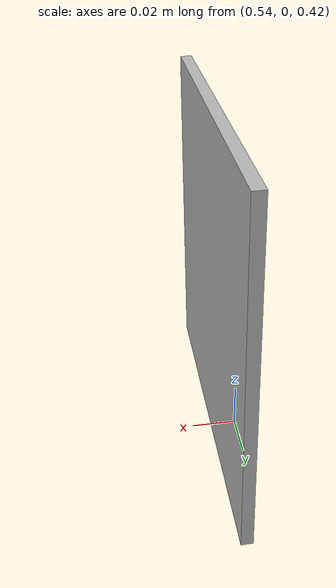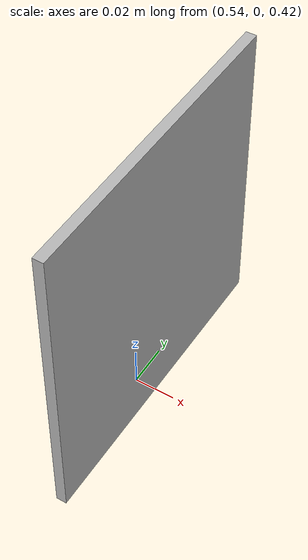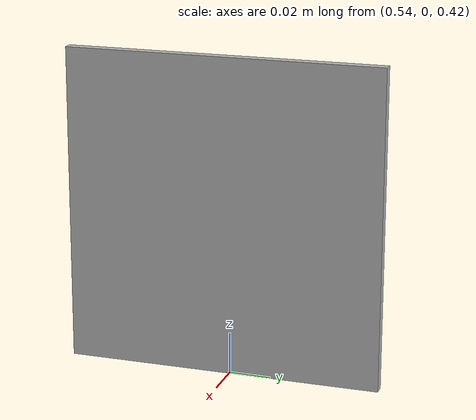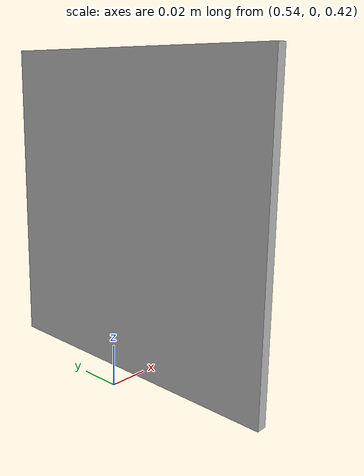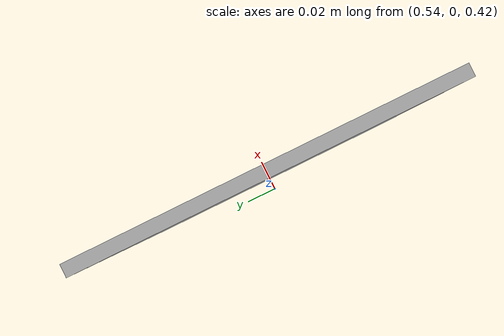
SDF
<?xml version="1.0" ?>
<sdf version="1.5">
  <world name="default">

    <physics type="ode">
      <max_step_size>0.0002</max_step_size>
      <real_time_factor>1</real_time_factor>
      <real_time_update_rate>5000</real_time_update_rate>
      <gravity>0 0 -9.81</gravity>
      <ode>
        <solver>
          <type>quick</type>
          <iters>50</iters>
          <sor>1.3</sor>
        </solver>
        <constraints>
          <cfm>0.0</cfm>
          <erp>0.2</erp>
          <contact_max_correcting_vel>10.0</contact_max_correcting_vel>
          <contact_surface_layer>0.001</contact_surface_layer>
        </constraints>
      </ode>
    </physics>

    <scene>
      <sky>
        <clouds><speed>12</speed></clouds>
      </sky>
    </scene>

    <include><uri>model://sun</uri></include>
    <include><uri>model://ground_plane</uri></include>

    <!-- ArUco Marker 0 — initial position in the arm's reachable workspace -->
    <!-- Moved by marker_mover_node at runtime via /gazebo/set_model_state -->
    <include>
      <uri>model://aruco_marker_0</uri>
      <name>aruco_marker_0</name>
      <pose>0.55 0 0.5 0 -1.5708 0</pose>
    </include>

  </world>
</sdf>

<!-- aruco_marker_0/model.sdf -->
<sdf version="1.6">
  <model name="aruco_marker_0">
    <static>false</static>
    <link name="marker_link">

      <inertial>
        <mass>0.1</mass>
        <inertia>
          <ixx>0.0001</ixx><ixy>0</ixy><ixz>0</ixz>
          <iyy>0.0001</iyy><iyz>0</iyz>
          <izz>0.0001</izz>
        </inertia>
      </inertial>

      <!-- Thin flat board: 0.15m x 0.15m x 0.005m -->
      <visual name="visual">
        <geometry>
          <box><size>0.15 0.15 0.005</size></box>
        </geometry>
        <material>
          <script>
            <uri>model://aruco_marker_0/materials/scripts</uri>
            <uri>model://aruco_marker_0/materials/textures</uri>
            <name>ArucoMarker0</name>
          </script>
        </material>
      </visual>

      <collision name="collision">
        <geometry>
          <box><size>0.15 0.15 0.005</size></box>
        </geometry>
      </collision>

    </link>
  </model>
</sdf>
